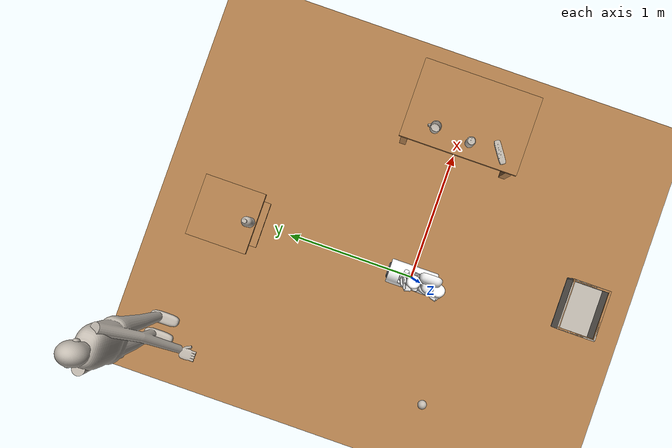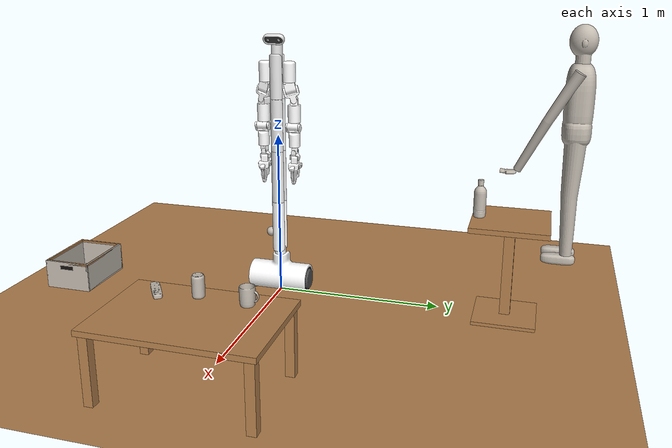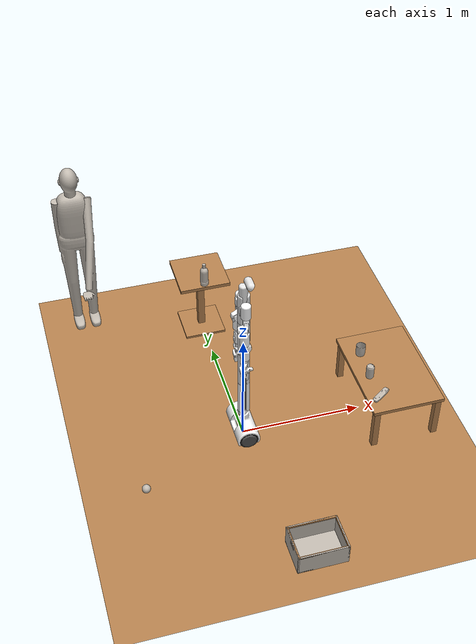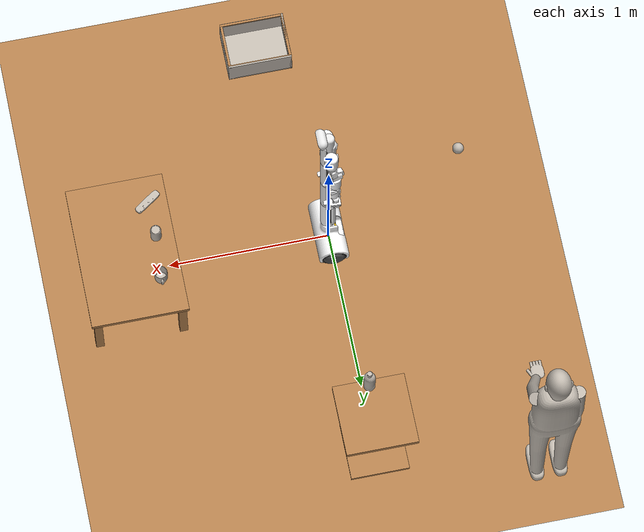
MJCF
<mujoco model="bracketbot home">
  <include file="../../main_mujoco/chopped_dynamic.xml"/>
  <!-- chopped_dynamic.xml sets meshdir relative to main_mujoco; point it back
       there from this folder. Must come after the include to take effect. -->
  <compiler meshdir="../../main_mujoco/meshes/" texturedir="../../comp_vision_sim/assets/"/>
  <include file="../../comp_vision_sim/assets/household.xml"/>
  <option noslip_iterations="5"/>

  <statistic center="0.8 0 0.5" extent="2.6"/>

  <visual>
    <headlight diffuse="0.55 0.55 0.55" ambient="0.35 0.35 0.35" specular="0.1 0.1 0.1"/>
    <rgba haze="0.15 0.25 0.35 1"/>
    <global azimuth="150" elevation="-20" offwidth="1280" offheight="960"/>
    <map znear="0.005" zfar="30"/>
    <quality shadowsize="4096"/>
  </visual>

  <asset>
    <texture type="skybox" builtin="gradient" rgb1="0.3 0.5 0.7" rgb2="0 0 0" width="512" height="3072"/>
    <!-- oak boards, as in home_search.xml, rather than a checkerboard -->
    <texture type="2d" name="woodfloor" file="floor_oak.png"/>
    <material name="woodfloor" texture="woodfloor" texuniform="true" texrepeat="1.6 1.6"
              reflectance="0.05" specular="0.18" shininess="0.25"/>
    <material name="furniture" rgba="0.42 0.30 0.22 1"/>
    <material name="basket" rgba="0.75 0.68 0.52 1"/>
    <material name="clothes" rgba="0.38 0.42 0.50 1"/>
    <material name="skin" rgba="0.80 0.66 0.56 1"/>
    <material name="mug" rgba="0.85 0.18 0.18 1"/>
    <material name="can" rgba="0.15 0.70 0.25 1"/>
    <material name="bottle" rgba="0.92 0.80 0.10 1"/>
    <material name="remote" rgba="0.50 0.20 0.75 1"/>
    <material name="ball" rgba="0.95 0.30 0.65 1"/>
  </asset>

  <default>
    <default class="item">
      <geom condim="4" friction="1.0 0.01 0.001" solref="0.005 1" priority="1" group="3"/>
    </default>
    <default class="look">
      <geom type="mesh" contype="0" conaffinity="0" group="2" mass="0"/>
    </default>
  </default>

  <worldbody>
    <light pos="1 0 4" dir="0 0 -1" directional="true" diffuse="0.5 0.5 0.5"/>
    <light pos="3 3 3" dir="-1 -1 -1" diffuse="0.35 0.35 0.35"/>
    <geom name="floor" size="0 0 0.05" type="plane" material="woodfloor"
          friction="1.6 0.01 0.001" condim="4"/>

    <!-- coffee table, 0.40 m high, in front of the robot's start pose -->
    <body name="coffee_table" pos="1.25 0 0">
      <geom name="coffee_table_top" type="box" pos="0 0 0.385" size="0.30 0.45 0.015"
            material="look_tabletop" friction="1.0 0.01 0.001" condim="4"/>
      <geom type="box" pos=" 0.26  0.41 0.185" size="0.025 0.025 0.185" material="look_tableleg"/>
      <geom type="box" pos=" 0.26 -0.41 0.185" size="0.025 0.025 0.185" material="look_tableleg"/>
      <geom type="box" pos="-0.26  0.41 0.185" size="0.025 0.025 0.185" material="look_tableleg"/>
      <geom type="box" pos="-0.26 -0.41 0.185" size="0.025 0.025 0.185" material="look_tableleg"/>
    </body>

    <!-- side table, 0.60 m high, to the robot's left -->
    <body name="side_table" pos="0 1.4 0">
      <geom name="side_table_top" type="box" pos="0 0 0.585" size="0.22 0.22 0.015"
            material="look_tabletop" friction="1.0 0.01 0.001" condim="4"/>
      <geom type="box" pos="0 0 0.285" size="0.03 0.03 0.285" material="look_tableleg"/>
      <geom type="box" pos="0 0 0.01" size="0.18 0.18 0.01" material="look_tableleg"/>
    </body>

    <body name="basket" pos="0.2 -1.3 0">
      <geom name="basket_floor" type="box" pos="0 0 0.005" size="0.2 0.15 0.005" material="look_wicker"/>
      <geom name="basket_wall_e" type="box" pos=" 0.195 0 0.09" size="0.005 0.15 0.09" material="look_wicker"/>
      <geom name="basket_wall_w" type="box" pos="-0.195 0 0.09" size="0.005 0.15 0.09" material="look_wicker"/>
      <geom name="basket_wall_n" type="box" pos="0  0.145 0.09" size="0.2 0.005 0.09" material="look_wicker"/>
      <geom name="basket_wall_s" type="box" pos="0 -0.145 0.09" size="0.2 0.005 0.09" material="look_wicker"/>
      <geom class="look" type="box" pos=" 0.192 0 0.174" size="0.008 0.150 0.006" material="look_tabletop"/>
      <geom class="look" type="box" pos="-0.192 0 0.174" size="0.008 0.150 0.006" material="look_tabletop"/>
      <geom class="look" type="box" pos="0  0.142 0.174" size="0.200 0.008 0.006" material="look_tabletop"/>
      <geom class="look" type="box" pos="0 -0.142 0.174" size="0.200 0.008 0.006" material="look_tabletop"/>
      <geom class="look" type="box" pos=" 0.1996 0 0.145" size="0.0005 0.045 0.012" rgba="0.08 0.06 0.04 1"/>
      <geom class="look" type="box" pos="-0.1996 0 0.145" size="0.0005 0.045 0.012" rgba="0.08 0.06 0.04 1"/>
    </body>

    <body name="person" pos="-1.0 1.75 0">
      <geom type="box" pos="0 0 0.42" size="0.13 0.09 0.42" material="clothes" group="3"/>
      <geom type="cylinder" pos="0 0 1.1" size="0.17 0.28" material="clothes" group="3"/>
      <geom type="sphere" pos="0 0 1.52" size="0.11" material="skin" group="3"/>
      <!-- hand held out at waist height: 0.63 m keeps the release point and
           the hover above it inside the arm's top-grasp envelope -->
      <!-- forearm kept BELOW the palm's top: level with it, an item set on
           the palm's edge landed on the arm instead -->
      <geom type="box" pos="0 -0.19 0.585" size="0.035 0.19 0.03" material="skin" group="3"/>
      <geom name="person_palm" type="box" pos="0 -0.43 0.615" size="0.07 0.06 0.012"
            material="skin" friction="1.2 0.01 0.001" condim="4" group="3"/>
      <geom class="look" mesh="look_person" material="look_person"/>
    </body>

    <!-- ===== items on the coffee table (near edge is x = 0.95) ===== -->
    <body name="mug" pos="1.08 0.22 0.40">
      <freejoint name="mug_free"/>
      <geom name="mug_body" class="item" type="cylinder" pos="0 0 0.05" size="0.04 0.05"
            material="mug" mass="0.22"/>
      <geom name="mug_handle" class="item" type="box" pos="0 0.05 0.05" size="0.008 0.012 0.03"
            material="mug" mass="0.03"/>
      <geom class="look" mesh="look_mug" material="look_mug"/>
    </body>

    <body name="can" pos="1.06 -0.05 0.40">
      <freejoint name="can_free"/>
      <geom name="can_body" class="item" type="cylinder" pos="0 0 0.06" size="0.033 0.06"
            material="can" mass="0.15"/>
      <geom class="look" mesh="look_can" material="look_can"/>
    </body>

    <body name="remote" pos="1.07 -0.28 0.40" euler="0 0 0.6">
      <freejoint name="remote_free"/>
      <geom name="remote_body" class="item" type="box" pos="0 0 0.0125" size="0.09 0.024 0.0125"
            material="remote" mass="0.12"/>
      <geom class="look" mesh="look_remote" material="look_remote"/>
    </body>

    <!-- ===== items on the side table ===== -->
    <body name="bottle" pos="0 1.22 0.60">
      <freejoint name="bottle_free"/>
      <geom name="bottle_body" class="item" type="cylinder" pos="0 0 0.09" size="0.035 0.09"
            material="bottle" mass="0.20"/>
      <geom name="bottle_neck" class="item" type="cylinder" pos="0 0 0.20" size="0.016 0.02"
            material="bottle" mass="0.02"/>
      <geom class="look" mesh="look_bottle" material="look_bottle"/>
    </body>

    <!-- ===== "missing" items on the floor ===== -->
    <body name="ball" pos="-0.9 -0.4 0">
      <freejoint name="ball_free"/>
      <geom name="ball_body" class="item" type="sphere" pos="0 0 0.035" size="0.035"
            material="ball" mass="0.06" condim="6" friction="1.0 0.02 0.002"/>
      <geom class="look" mesh="look_ball" material="look_ball"/>
    </body>
  </worldbody>
</mujoco>

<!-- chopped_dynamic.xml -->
<mujoco model="bracketbot_chopped_v2">
  <compiler angle="radian" meshdir="meshes/" autolimits="true" />
  <option timestep="0.002" integrator="implicitfast" cone="elliptic" impratio="10" />
  <asset>
    <mesh name="Base_Extrusion__Base_Extrusion" content_type="model/stl" file="Base_Extrusion__Base_Extrusion.stl" />
    <mesh name="Base_Extrusion__Base_Extrusion__Base_Extrusion__Base_Extrusion" content_type="model/stl" file="Base_Extrusion__Base_Extrusion__Base_Extrusion__Base_Extrusion.stl" />
    <mesh name="Base_Plate__Base_Plate" content_type="model/stl" file="Base_Plate__Base_Plate.stl" />
    <mesh name="Base_Print__Base_Print" content_type="model/stl" file="Base_Print__Base_Print.stl" />
    <mesh name="Battery_Terminal__Battery_Terminal" content_type="model/stl" file="Battery_Terminal__Battery_Terminal.stl" />
    <mesh name="Bottom_Cover_Back__Bottom_Cover_Back__Bottom_Cover_Back__Bottom_Cover_Back" content_type="model/stl" file="Bottom_Cover_Back__Bottom_Cover_Back__Bottom_Cover_Back__Bottom_Cover_Back.stl" />
    <mesh name="Bottom_Cover_Front__Bottom_Cover_Front__Bottom_Cover_Front__Bottom_Cover_Front" content_type="model/stl" file="Bottom_Cover_Front__Bottom_Cover_Front__Bottom_Cover_Front__Bottom_Cover_Front.stl" />
    <mesh name="Camera_Cover__Camera_Cover__Camera_Cover__Camera_Cover" content_type="model/stl" file="Camera_Cover__Camera_Cover__Camera_Cover__Camera_Cover.stl" />
    <mesh name="Cover_MiddleBot_Back__Cover_MiddleBot_Back__Cover_MiddleBot_Back__Cover_MiddleBot_Back" content_type="model/stl" file="Cover_MiddleBot_Back__Cover_MiddleBot_Back__Cover_MiddleBot_Back__Cover_MiddleBot_Back.stl" />
    <mesh name="Cover_MiddleBot_Front__Cover_MiddleBot_Front__Cover_MiddleBot_Front__Cover_MiddleBot_Front" content_type="model/stl" file="Cover_MiddleBot_Front__Cover_MiddleBot_Front__Cover_MiddleBot_Front__Cover_MiddleBot_Front.stl" />
    <mesh name="Cover_MiddleTop_Back__Cover_MiddleTop_Back__Cover_MiddleTop_Back__Cover_MiddleTop_Back" content_type="model/stl" file="Cover_MiddleTop_Back__Cover_MiddleTop_Back__Cover_MiddleTop_Back__Cover_MiddleTop_Back.stl" />
    <mesh name="Cover_MiddleTop_Front__Cover_MiddleTop_Front__Cover_MiddleTop_Front__Cover_MiddleTop_Front" content_type="model/stl" file="Cover_MiddleTop_Front__Cover_MiddleTop_Front__Cover_MiddleTop_Front__Cover_MiddleTop_Front.stl" />
    <mesh name="Cover_Top_Front__Cover_Top_Front__Cover_Top_Front__Cover_Top_Front" content_type="model/stl" file="Cover_Top_Front__Cover_Top_Front__Cover_Top_Front__Cover_Top_Front.stl" />
    <mesh name="Head__Head__Head__Head" content_type="model/stl" file="Head__Head__Head__Head.stl" />
    <mesh name="Head_Cover__Head_Cover__Head_Cover__Head_Cover" content_type="model/stl" file="Head_Cover__Head_Cover__Head_Cover__Head_Cover.stl" />
    <mesh name="Left_wheel_cap__Left_wheel_cap" content_type="model/stl" file="Left_wheel_cap__Left_wheel_cap.stl" />
    <mesh name="Left_Wheel_Tire__Left_Wheel_Tire" content_type="model/stl" file="Left_Wheel_Tire__Left_Wheel_Tire.stl" />
    <mesh name="Main_Extrusion__Main_Extrusion__Main_Extrusion__Main_Extrusion" content_type="model/stl" file="Main_Extrusion__Main_Extrusion__Main_Extrusion__Main_Extrusion.stl" />
    <mesh name="Mirror30__Mirror30" content_type="model/stl" file="Mirror30__Mirror30.stl" />
    <mesh name="Right_Wheel_Cap__Right_Wheel_Cap" content_type="model/stl" file="Right_Wheel_Cap__Right_Wheel_Cap.stl" />
    <mesh name="Right_Wheel_Tire__Right_Wheel_Tire" content_type="model/stl" file="Right_Wheel_Tire__Right_Wheel_Tire.stl" />
    <mesh name="Top_Cover_back__Top_Cover_back__Top_Cover_back__Top_Cover_back" content_type="model/stl" file="Top_Cover_back__Top_Cover_back__Top_Cover_back__Top_Cover_back.stl" />
    <mesh name="Bicep__Bicep" content_type="model/stl" file="Bicep__Bicep.stl" />
    <mesh name="Bicep_Cover__Bicep_Cover" content_type="model/stl" file="Bicep_Cover__Bicep_Cover.stl" />
    <mesh name="Forearm__Forearm" content_type="model/stl" file="Forearm__Forearm.stl" />
    <mesh name="Forearm_Cover__Forearm_Cover" content_type="model/stl" file="Forearm_Cover__Forearm_Cover.stl" />
    <mesh name="Forearm_Rotation__Forearm_Rotation" content_type="model/stl" file="Forearm_Rotation__Forearm_Rotation.stl" />
    <mesh name="Hand__Hand" content_type="model/stl" file="Hand__Hand.stl" />
    <mesh name="Hand_Motor_Mount__Hand_Motor_Mount" content_type="model/stl" file="Hand_Motor_Mount__Hand_Motor_Mount.stl" />
    <mesh name="Left_Finger__Left_Finger" content_type="model/stl" file="Left_Finger__Left_Finger.stl" />
    <mesh name="Right_Finger__Right_Finger" content_type="model/stl" file="Right_Finger__Right_Finger.stl" />
    <mesh name="Shoulder__Shoulder" content_type="model/stl" file="Shoulder__Shoulder.stl" />
    <mesh name="Shoulder_Cover__Shoulder_Cover" content_type="model/stl" file="Shoulder_Cover__Shoulder_Cover.stl" />
    <mesh name="Shoulder_Knuckle__Shoulder_Knuckle" content_type="model/stl" file="Shoulder_Knuckle__Shoulder_Knuckle.stl" />
    <mesh name="Wrist_Cam__Wrist_Cam" content_type="model/stl" file="Wrist_Cam__Wrist_Cam.stl" />
    <mesh name="Wrist_Knuckle__Wrist_Knuckle" content_type="model/stl" file="Wrist_Knuckle__Wrist_Knuckle.stl" />
    <mesh name="Shoulder__Shoulder_Mirrored" content_type="model/stl" file="Shoulder__Shoulder_Mirrored.stl" />
    <mesh name="Shoulder_Knuckle__Shoulder_Knuckle_Mirrored" content_type="model/stl" file="Shoulder_Knuckle__Shoulder_Knuckle_Mirrored.stl" />
    <mesh name="Bicep__Bicep_Mirrored" content_type="model/stl" file="Bicep__Bicep_Mirrored.stl" />
    <mesh name="Forearm__Forearm_Mirrored" content_type="model/stl" file="Forearm__Forearm_Mirrored.stl" />
    <mesh name="Forearm_Rotation__Forearm_Rotation_Mirrored" content_type="model/stl" file="Forearm_Rotation__Forearm_Rotation_Mirrored.stl" />
    <mesh name="Wrist_Knuckle__Wrist_Knuckle_Mirrored" content_type="model/stl" file="Wrist_Knuckle__Wrist_Knuckle_Mirrored.stl" />
    <mesh name="Hand__Hand_Mirrored" content_type="model/stl" file="Hand__Hand_Mirrored.stl" />
    <mesh name="Wrist_Cam__Wrist_Cam_Mirrored" content_type="model/stl" file="Wrist_Cam__Wrist_Cam_Mirrored.stl" />
    <mesh name="Hand_Motor_Mount__Hand_Motor_Mount_Mirrored" content_type="model/stl" file="Hand_Motor_Mount__Hand_Motor_Mount_Mirrored.stl" />
    <mesh name="Right_Finger__Right_Finger_Mirrored" content_type="model/stl" file="Right_Finger__Right_Finger_Mirrored.stl" />
    <mesh name="Left_Finger__Left_Finger_Mirrored" content_type="model/stl" file="Left_Finger__Left_Finger_Mirrored.stl" />
    <mesh name="Forearm_Cover__Forearm_Cover_Mirrored" content_type="model/stl" file="Forearm_Cover__Forearm_Cover_Mirrored.stl" />
    <mesh name="Bicep_Cover__Bicep_Cover_Mirrored" content_type="model/stl" file="Bicep_Cover__Bicep_Cover_Mirrored.stl" />
    <mesh name="Shoulder_Cover__Shoulder_Cover_Mirrored" content_type="model/stl" file="Shoulder_Cover__Shoulder_Cover_Mirrored.stl" />
  </asset>
  <default>
    <default class="visual">
      <geom contype="0" conaffinity="0" group="2" type="mesh" density="0" />
    </default>
    <default class="collision">
      <geom contype="1" conaffinity="1" group="3" density="0" rgba="0.9 0.4 0.2 0.35" friction="1 0.005 0.0001" />
    </default>
    <default class="wheel">
      <geom contype="1" conaffinity="1" group="3" density="0" rgba="0.1 0.1 0.1 0.6" friction="1.6 0.01 0.001" condim="4" solref="0.005 1" priority="2" />
    </default>
    <default class="pad">
      <geom contype="1" conaffinity="1" group="3" density="0" rgba="0.2 0.8 0.4 0.6" friction="2.5 0.05 0.005" condim="4" priority="3" solref="0.004 1" solimp="0.95 0.99 0.001" />
    </default>
    <default class="arm">
      <joint damping="4.0" armature="0.05" frictionloss="0.1" />
      <position kp="800" kv="60" forcerange="-150 150" />
    </default>
    <default class="mast">
      <joint damping="60" armature="0.5" frictionloss="1.0" />
      <position kp="6000" kv="400" forcerange="-400 400" />
    </default>
    <default class="gripper">
      <joint damping="0.4" armature="0.01" frictionloss="0.02" />
      <position kp="35" kv="1.5" forcerange="-12 12" />
    </default>
  </default>
  <worldbody>
    <body name="chassis" pos="0 0 0">
      <freejoint name="root" />
      <inertial pos="0.018227 3.07762e-06 0.144928" quat="6.24856e-05 0.717422 -6.23742e-05 -0.696638" mass="3.38" diaginertia="0.0545356 0.0861119 0.11238" />
      <site name="imu" pos="0.018227 3.07762e-06 0.144928" size="0.01" rgba="0 1 0 0.5" />
      <geom class="visual" mesh="Base_Plate__Base_Plate" pos="0.0113398 6.4516e-07 0.0776294" quat="0.707106 -0.707108 -1.79246e-05 -1.77981e-05" rgba="1 1 1 1" />
      <geom class="visual" mesh="Bottom_Cover_Front__Bottom_Cover_Front__Bottom_Cover_Front__Bottom_Cover_Front" pos="0.0153412 0.00013591 0.0503629" quat="0.707106 -0.707108 -1.79246e-05 -1.77981e-05" rgba="1 1 1 1" />
      <geom class="visual" mesh="Cover_MiddleBot_Front__Cover_MiddleBot_Front__Cover_MiddleBot_Front__Cover_MiddleBot_Front" pos="0.0153412 0.00013591 0.0503629" quat="0.707106 -0.707108 -1.79246e-05 -1.77981e-05" rgba="0.8941 0.8941 0.8941 1" />
      <geom class="visual" mesh="Cover_MiddleTop_Front__Cover_MiddleTop_Front__Cover_MiddleTop_Front__Cover_MiddleTop_Front" pos="0.0153412 0.00013591 0.0503629" quat="0.707106 -0.707108 -1.79246e-05 -1.77981e-05" rgba="0.8941 0.8941 0.8941 1" />
      <geom class="visual" mesh="Cover_Top_Front__Cover_Top_Front__Cover_Top_Front__Cover_Top_Front" pos="0.0153412 0.00013591 0.0503629" quat="0.707106 -0.707108 -1.79246e-05 -1.77981e-05" rgba="0.8941 0.8941 0.8941 1" />
      <geom class="visual" mesh="Top_Cover_back__Top_Cover_back__Top_Cover_back__Top_Cover_back" pos="0.0153412 0.00013591 0.0503629" quat="0.707106 -0.707108 -1.79246e-05 -1.77981e-05" rgba="0.8941 0.8941 0.8941 1" />
      <geom class="visual" mesh="Cover_MiddleTop_Back__Cover_MiddleTop_Back__Cover_MiddleTop_Back__Cover_MiddleTop_Back" pos="0.0153412 0.00013591 0.0503629" quat="0.707106 -0.707108 -1.79246e-05 -1.77981e-05" rgba="0.8941 0.8941 0.8941 1" />
      <geom class="visual" mesh="Cover_MiddleBot_Back__Cover_MiddleBot_Back__Cover_MiddleBot_Back__Cover_MiddleBot_Back" pos="0.0153412 0.00013591 0.0503629" quat="0.707106 -0.707108 -1.79246e-05 -1.77981e-05" rgba="0.8941 0.8941 0.8941 1" />
      <geom class="visual" mesh="Bottom_Cover_Back__Bottom_Cover_Back__Bottom_Cover_Back__Bottom_Cover_Back" pos="0.0153412 0.00013591 0.0503629" quat="0.707106 -0.707108 -1.79246e-05 -1.77981e-05" rgba="1 1 1 1" />
      <geom class="visual" mesh="Main_Extrusion__Main_Extrusion__Main_Extrusion__Main_Extrusion" pos="0.0113398 6.4516e-07 0.0776294" quat="0.707106 -0.707108 -1.79246e-05 -1.77981e-05" rgba="0.302 0.302 0.302 1" />
      <geom class="visual" mesh="Base_Extrusion__Base_Extrusion__Base_Extrusion__Base_Extrusion" pos="0.0113398 6.4516e-07 0.0776294" quat="0.707106 -0.707108 -1.79246e-05 -1.77981e-05" rgba="0.8 0.8 0.8 1" />
      <geom class="visual" mesh="Base_Extrusion__Base_Extrusion" pos="0.0113397 6.47368e-07 0.0776294" quat="0.707106 -0.707108 -1.79246e-05 -1.77981e-05" rgba="0.7922 0.8196 0.9333 1" />
      <geom class="visual" mesh="Base_Print__Base_Print" pos="0.0113398 6.4516e-07 0.0776294" quat="0.707106 -0.707108 -1.79246e-05 -1.77981e-05" rgba="1 1 1 1" />
      <geom class="visual" mesh="Battery_Terminal__Battery_Terminal" pos="0.0113398 6.4516e-07 0.0776294" quat="0.707106 -0.707108 -1.79246e-05 -1.77981e-05" rgba="1 0.7569 0.0549 1" />
      <geom class="visual" mesh="Mirror30__Mirror30" pos="0.0113398 6.4516e-07 0.0776294" quat="0.707106 -0.707108 -1.79246e-05 -1.77981e-05" rgba="1 1 1 1" />
      <geom class="visual" mesh="Head__Head__Head__Head" pos="0.0113398 6.4516e-07 0.0776294" quat="0.707106 -0.707108 -1.79246e-05 -1.77981e-05" rgba="0.8941 0.8941 0.8941 1" />
      <geom class="visual" mesh="Camera_Cover__Camera_Cover__Camera_Cover__Camera_Cover" pos="0.0113428 6.4516e-07 0.0776293" quat="0.707106 -0.707108 -1.8625e-05 -1.84985e-05" rgba="0.251 0.251 0.251 1" />
      <geom class="visual" mesh="Head_Cover__Head_Cover__Head_Cover__Head_Cover" pos="0.0113398 6.4516e-07 0.0776294" quat="0.707106 -0.707108 -1.79246e-05 -1.77981e-05" rgba="0.8941 0.8941 0.8941 1" />
      <geom class="collision" name="col_base_hull" type="box" pos="3.94536e-05 7.39092e-07 0.157186" size="0.0935995 0.18575 0.129078" />
      <geom class="collision" name="col_mast" type="box" pos="8.99487e-07 2.8209e-06 0.847629" size="0.0200308 0.0200017 0.610001" />
      <geom class="collision" name="col_head" type="box" pos="0.0202672 1.33499e-05 1.5235" size="0.054031 0.0654754 0.0878748" />
      <camera name="head_rgb" mode="fixed" fovy="42" pos="0.0792982 0 1.5435" xyaxes="0 -1 0 0 0 1" />
      <camera name="head_depth" mode="fixed" fovy="58" pos="0.0792982 0 1.5435" xyaxes="0 -1 0 0.374607 0 0.927184" />
      <camera name="head_stereo_left" mode="fixed" fovy="55" pos="0.0792982 0.03 1.5435" xyaxes="0 -1 0 0 0 1" />
      <camera name="head_stereo_right" mode="fixed" fovy="55" pos="0.0792982 -0.03 1.5435" xyaxes="0 -1 0 0 0 1" />
      <body name="right_wheel" pos="0 -0.1611 0.0846">
        <joint name="right_wheel_joint" type="hinge" axis="0 1 0" damping="0.02" armature="0.005" frictionloss="0.01" />
        <inertial pos="0 0 0" mass="2.2" diaginertia="0.009 0.018 0.009" />
        <geom class="visual" mesh="Right_Wheel_Cap__Right_Wheel_Cap" pos="0.0113398 0.161101 -0.0069706" quat="0.707106 -0.707108 -1.79246e-05 -1.77981e-05" rgba="0.302 0.302 0.302 1" />
        <geom class="visual" mesh="Right_Wheel_Tire__Right_Wheel_Tire" pos="0.0113398 0.161101 -0.0069706" quat="0.707106 -0.707108 -1.79246e-05 -1.77981e-05" rgba="0.302 0.302 0.302 1" />
        <geom class="wheel" name="right_tire" type="cylinder" size="0.0846 0.0226" zaxis="0 1 0" />
        <site name="right_wheel_site" size="0.005" rgba="1 0 0 0.5" />
      </body>
      <body name="left_wheel" pos="0 0.1611 0.0846">
        <joint name="left_wheel_joint" type="hinge" axis="0 1 0" damping="0.02" armature="0.005" frictionloss="0.01" />
        <inertial pos="0 0 0" mass="2.2" diaginertia="0.009 0.018 0.009" />
        <geom class="visual" mesh="Left_wheel_cap__Left_wheel_cap" pos="0.0113398 -0.161099 -0.0069706" quat="0.707106 -0.707108 -1.79246e-05 -1.77981e-05" rgba="0.302 0.302 0.302 1" />
        <geom class="visual" mesh="Left_Wheel_Tire__Left_Wheel_Tire" pos="0.0113398 -0.161099 -0.0069706" quat="0.707106 -0.707108 -1.79246e-05 -1.77981e-05" rgba="0.302 0.302 0.302 1" />
        <geom class="wheel" name="left_tire" type="cylinder" size="0.0846 0.0226" zaxis="0 1 0" />
        <site name="left_wheel_site" size="0.005" rgba="1 0 0 0.5" />
      </body>
      <body name="arm_base" pos="-1.35902e-08 -2.23143e-08 0.0303917" quat="1 0 0 0">
        <inertial pos="0 0 0" mass="4.17424e-07" diaginertia="0 0 0" />
        <body name="shoulder__shoulder" pos="7.84415e-09 -0.0275 1.40573" quat="1 4.63465e-12 1.8366e-06 1.42623e-07">
          <inertial pos="-0.00207733 -0.0439747 -0.0719634" quat="0.993106 -0.0357613 0.00588813 -0.111477" mass="0.293558" diaginertia="0.000833124 0.00080203 0.000207478" />
          <joint name="rj0" type="slide" range="-1.03044 0" class="mast" />
          <geom pos="0.0112151 0.0286011 -1.35824" quat="0 1 0 0" type="mesh" contype="0" conaffinity="0" group="1" rgba="1 1 1 1" density="0" mesh="Shoulder__Shoulder" />
          <body name="shoulder_cover__shoulder_cover" pos="0.0112151 0.0286011 -1.35824" quat="0 1 0 0">
            <inertial pos="-0.0111642 0.0752512 -1.30987" mass="0.239577" diaginertia="0.000379014 0.000379014 0.000180015" />
            <geom type="mesh" contype="0" conaffinity="0" group="1" rgba="1 1 1 1" density="0" mesh="Shoulder_Cover__Shoulder_Cover" />
          </body>
          <body name="shoulder_knuckle__shoulder_knuckle" pos="-0.00793877 -0.0857475 -0.144638" quat="0.76632 0.608761 -1.00888e-06 -0.205336">
            <inertial pos="-0.00359973 -0.0351324 -0.032679" quat="0.0694297 0.857532 0.164673 0.48239" mass="0.0558705" diaginertia="7.70147e-05 5.78959e-05 5.13611e-05" />
            <joint name="rj1" range="-2.0944 2.0944" class="arm" />
            <geom pos="0.285662 -1.10745 -0.425773" quat="0.608761 0.76632 0.205335 0" type="mesh" contype="0" conaffinity="0" group="1" rgba="1 1 1 1" density="0" mesh="Shoulder_Knuckle__Shoulder_Knuckle" />
            <body name="bicep__bicep" pos="-0.0345871 -0.0799863 -0.0310962" quat="0.425282 0.427297 0.563398 0.56492">
              <inertial pos="-0.0787373 -0.0223314 0.0425602" quat="0.574949 0.0709813 0.0593942 0.812938" mass="0.270597" diaginertia="0.000860707 0.000850777 0.000156718" />
              <joint name="rj2" range="-2.0944 2.0944" class="arm" />
              <geom pos="-1.08044 -0.3902 0.0283732" quat="0.70241 0.181779 -0.688169 1.62104e-12" type="mesh" contype="0" conaffinity="0" group="1" rgba="1 1 1 1" density="0" mesh="Bicep__Bicep" />
              <body name="bicep_cover__bicep_cover" pos="-1.08044 -0.3902 0.0283732" quat="0.70241 0.181779 -0.688169 1.62104e-12">
                <inertial pos="-0.0254793 0.097391 -1.06421" quat="0.988942 0.00734107 -0.0909335 0.11692" mass="0.0410095" diaginertia="6.9102e-05 6.60774e-05 5.30729e-05" />
                <geom type="mesh" contype="0" conaffinity="0" group="1" rgba="1 1 1 1" density="0" mesh="Bicep_Cover__Bicep_Cover" />
              </body>
              <body name="forearm__forearm" pos="-0.140146 -0.0763873 0.0558851" quat="0.62745 -0.367259 -0.485501 -0.485505">
                <inertial pos="-0.0213131 -0.0661025 0.0333011" quat="0.998205 -0.000305943 -0.0598432 0.00250762" mass="0.125696" diaginertia="0.000211413 0.000187563 7.6288e-05" />
                <joint name="rj3" range="-2.0944 2.0944" class="arm" />
                <geom pos="-0.000283681 -0.986812 -0.068819" quat="0.705623 0.708583 -0.00249187 0" type="mesh" contype="0" conaffinity="0" group="1" rgba="1 1 1 1" density="0" mesh="Forearm__Forearm" />
                <body name="forearm_cover__forearm_cover" pos="-0.000283681 -0.986812 -0.068819" quat="0.705623 0.708583 -0.00249187 0">
                  <inertial pos="-0.0228592 0.097541 -0.910018" quat="0.988569 -0.00684891 0.146667 -0.0342637" mass="0.0315972" diaginertia="4.591e-05 4.18317e-05 2.90731e-05" />
                  <geom type="mesh" contype="0" conaffinity="0" group="1" rgba="1 1 1 1" density="0" mesh="Forearm_Cover__Forearm_Cover" />
                </body>
                <body name="forearm_rotation__forearm_rotation" pos="-0.026394 -0.12487 0.0320705" quat="0.294631 -0.264653 0.65568 0.642834">
                  <inertial pos="3.56774e-05 2.45812e-05 -0.021805" quat="0.63268 0.00171299 0.00374296 0.774403" mass="0.0277186" diaginertia="9.51906e-06 8.21586e-06 6.86216e-06" />
                  <joint name="rj4" range="-2.0944 2.0944" class="arm" />
                  <geom pos="0.0641084 -0.0805833 -0.860955" quat="0.00516927 -0.393949 0.919118 -2.09626e-09" type="mesh" contype="0" conaffinity="0" group="1" rgba="1 1 1 1" density="0" mesh="Forearm_Rotation__Forearm_Rotation" />
                  <body name="wrist_knuckle__wrist_knuckle" pos="-0.0131274 -0.014875 -0.0327431" quat="0.668883 0.356813 -0.610479 0.229338">
                    <inertial pos="-0.0218344 -0.00560663 -0.02105" quat="-0.0884246 0.708648 0.053519 0.69795" mass="0.017672" diaginertia="9.31882e-06 9.01369e-06 8.94978e-06" />
                    <joint name="rj5" range="-2.0944 2.0944" class="arm" />
                    <geom pos="-0.791586 -0.264038 -0.0274632" quat="0.703518 0.141721 -0.696403 2.94367e-05" type="mesh" contype="0" conaffinity="0" group="1" rgba="1 1 1 1" density="0" mesh="Wrist_Knuckle__Wrist_Knuckle" />
                    <body name="hand__hand" pos="-0.0480111 0.0111602 -0.0199286" quat="0.504103 -0.402362 -0.581468 -0.495863">
                      <inertial pos="0.0104256 -0.0225964 -0.0208472" quat="0.557084 0.277612 0.286901 0.728201" mass="0.043433" diaginertia="4.29909e-05 3.78548e-05 2.46968e-05" />
                      <joint name="rj6" range="-2.0944 2.0944" class="arm" />
                      <geom pos="0.158112 -0.771279 -0.0790065" quat="0.724748 0.675251 0.137026 0" type="mesh" contype="0" conaffinity="0" group="1" rgba="1 1 1 1" density="0" mesh="Hand__Hand" />
                      <body name="left_finger__left_finger" pos="0.0413008 -0.0450476 -0.0372147" quat="0.504688 0.364974 0.605635 0.495268">
                        <inertial pos="-0.0340814 -0.00413194 -0.0245907" quat="0.629243 0.0482231 0.0863023 0.770896" mass="0.0192533" diaginertia="2.4503e-05 1.85765e-05 7.65472e-06" />
                        <joint name="right_left_gripper" range="0 1" class="gripper" />
                        <geom pos="-0.700467 -0.222749 -0.0540855" quat="0.695209 0.144141 -0.704207 1.7071e-08" type="mesh" contype="0" conaffinity="0" group="1" rgba="1 1 1 1" density="0" mesh="Left_Finger__Left_Finger" />
                        <geom class="pad" name="pad_left_finger__left_finger" type="box" pos="-0.101068 -0.0166277 -0.00985441" quat="-0.0741789 0.691555 0.10755 0.71041" size="0.02 0.005 0.018" />
                      </body>
                      <body name="right_finger__right_finger" pos="0.0413009 -0.0450476 -0.00313575" quat="0.520146 0.586412 -0.395122 -0.479008">
                        <inertial pos="0.0348601 -0.000281218 0.0243554" quat="0.624049 0.119738 0.01936 0.771914" mass="0.0190719" diaginertia="2.41795e-05 1.83122e-05 7.56347e-06" />
                        <joint name="right_right_gripper" range="0 1" class="gripper" />
                        <geom pos="0.736527 0.0353731 0.0544735" quat="0.718808 -0.139409 0.681088 1.76495e-08" type="mesh" contype="0" conaffinity="0" group="1" rgba="1 1 1 1" density="0" mesh="Right_Finger__Right_Finger" />
                        <geom class="pad" name="pad_right_finger__right_finger" type="box" pos="0.10257 0.00371085 0.0096654" quat="0.0333104 0.710855 0.069785 -0.699075" size="0.02 0.005 0.018" />
                      </body>
                      <body name="wrist_cam__wrist_cam" pos="0.158112 -0.771279 -0.0790065" quat="0.724748 0.675251 0.137026 0">
                        <inertial pos="0.0335636 0.104461 -0.727313" quat="0.923047 -0.0130961 0.3712 0.100115" mass="0.00122084" diaginertia="6.44369e-08 5.83221e-08 5.19117e-08" />
                        <geom type="mesh" contype="0" conaffinity="0" group="1" rgba="0.792157 0.819608 0.933333 1" density="0" mesh="Wrist_Cam__Wrist_Cam" />
                        <body name="hand_motor_mount__hand_motor_mount" pos="0 0 0">
                          <inertial pos="-0.0211672 0.094284 -0.72929" quat="0.447815 0.538612 -0.441638 0.560638" mass="0.0137253" diaginertia="8.60807e-06 7.32992e-06 4.25017e-06" />
                          <geom type="mesh" contype="0" conaffinity="0" group="1" rgba="1 1 1 1" density="0" mesh="Hand_Motor_Mount__Hand_Motor_Mount" />
                        </body>
                        <camera name="wrist_cam_right" mode="fixed" fovy="60" pos="0.035412 0.105034 -0.710844" xyaxes="-0.94002982 0.052407572 -0.33704212 0 0.98812591 0.15364632" />
                      </body>
                      <body name="right_eef" pos="0.0337039 -0.14163 -0.0201752" quat="0.702288 0.702288 0.0824116 0.0824116">
                        <inertial pos="0 0 0" mass="4.17424e-07" diaginertia="0 0 0" />
                      </body>
                      <geom class="collision" name="col_hand__hand" type="box" pos="0.0295917 -0.0288798 -0.0201749" size="0.052067 0.0456034 0.033038" />
                      <site name="right_grasp" pos="0.0554168 -0.146524 -0.0214994" quat="0.706816 -0.698929 -0.0925778 0.05778" size="0.008" rgba="0 1 0.3 0.6" group="4" />
                    </body>
                  </body>
                </body>
                <geom class="collision" name="col_forearm__forearm" type="box" pos="-0.0205737 -0.0537982 0.0328214" size="0.0382869 0.0715442 0.044621" />
              </body>
            </body>
          </body>
        </body>
        <body name="l_shoulder__shoulder" pos="-7.84415e-09 0.0275 1.40573" quat="1 2.65358e-06 1.8366e-06 1.42623e-07">
          <inertial pos="-0.00207733 0.0439747 -0.0719634" quat="0.993106 0.0357613 0.00588813 0.111477" mass="0.293558" diaginertia="0.000833124 0.00080203 0.000207478" />
          <joint name="lj0" type="slide" range="-1.03044 0" class="mast" />
          <geom pos="0.0112151 -0.0286011 -1.35824" quat="0 1 0 0" type="mesh" contype="0" conaffinity="0" group="1" rgba="1 1 1 1" density="0" mesh="Shoulder__Shoulder_Mirrored" />
          <body name="l_shoulder_cover__shoulder_cover" pos="0.0112151 -0.0286011 -1.35824" quat="0 -1 0 0">
            <inertial pos="-0.0111642 -0.0752512 -1.30987" mass="0.239577" diaginertia="0.000379014 0.000379014 0.000180015" />
            <geom type="mesh" contype="0" conaffinity="0" group="1" rgba="1 1 1 1" density="0" mesh="Shoulder_Cover__Shoulder_Cover_Mirrored" />
          </body>
          <body name="l_shoulder_knuckle__shoulder_knuckle" pos="-0.00793877 0.0857475 -0.144638" quat="0.588018 0.793353 7.74139e-07 0.15756">
            <inertial pos="-0.0206837 -0.0286257 0.032679" quat="-0.0694297 0.857532 -0.164673 0.48239" mass="0.0558705" diaginertia="7.70147e-05 5.78959e-05 5.13611e-05" />
            <joint name="lj1" range="-2.0944 2.0944" class="arm" />
            <geom pos="-0.306335 -1.10191 0.425773" quat="0.793353 0.588018 -0.157559 0" type="mesh" contype="0" conaffinity="0" group="1" rgba="1 1 1 1" density="0" mesh="Shoulder_Knuckle__Shoulder_Knuckle_Mirrored" />
            <body name="l_bicep__bicep" pos="-0.0699464 -0.0519767 0.0310962" quat="0.558556 0.557003 0.4356 0.433608">
              <inertial pos="-0.0787373 0.0223314 0.0425602" quat="0.812938 0.0593942 0.0709813 0.574949" mass="0.270597" diaginertia="0.000860707 0.000850777 0.000156718" />
              <joint name="lj2" range="-2.0944 2.0944" class="arm" />
              <geom pos="-1.08044 0.3902 0.0283732" quat="0.70241 -0.181779 -0.688169 -1.62104e-12" type="mesh" contype="0" conaffinity="0" group="1" rgba="1 1 1 1" density="0" mesh="Bicep__Bicep_Mirrored" />
              <body name="l_bicep_cover__bicep_cover" pos="-1.08044 0.3902 0.0283732" quat="0.70241 -0.181779 -0.688169 -1.62104e-12">
                <inertial pos="-0.0254793 -0.097391 -1.06421" quat="0.988942 -0.00734107 -0.0909335 -0.11692" mass="0.0410095" diaginertia="6.9102e-05 6.60774e-05 5.30729e-05" />
                <geom type="mesh" contype="0" conaffinity="0" group="1" rgba="1 1 1 1" density="0" mesh="Bicep_Cover__Bicep_Cover_Mirrored" />
              </body>
              <body name="l_forearm__forearm" pos="-0.140146 0.0763873 0.0558851" quat="-0.36555 0.625739 0.487709 0.486789">
                <inertial pos="-0.0208477 -0.0662508 -0.0333011" quat="0.998205 0.000305943 -0.0598432 -0.00250762" mass="0.125696" diaginertia="0.000211413 0.000187563 7.6288e-05" />
                <joint name="lj3" range="-2.0944 2.0944" class="arm" />
                <geom pos="0.00665687 -0.98679 0.068819" quat="0.708587 0.705619 0.00248144 0" type="mesh" contype="0" conaffinity="0" group="1" rgba="1 1 1 1" density="0" mesh="Forearm__Forearm_Mirrored" />
                <body name="l_forearm_cover__forearm_cover" pos="0.00665687 -0.98679 0.068819" quat="0.708587 0.705619 0.00248144 0">
                  <inertial pos="-0.0228592 -0.097541 -0.910018" quat="0.988569 0.00684891 0.146667 0.0342637" mass="0.0315972" diaginertia="4.591e-05 4.18317e-05 2.90731e-05" />
                  <geom type="mesh" contype="0" conaffinity="0" group="1" rgba="1 1 1 1" density="0" mesh="Forearm_Cover__Forearm_Cover_Mirrored" />
                </body>
                <body name="l_forearm_rotation__forearm_rotation" pos="-0.0255151 -0.125052 -0.0320705" quat="-0.266957 0.292369 0.643866 0.654745">
                  <inertial pos="3.56774e-05 -2.45812e-05 -0.021805" quat="0.774403 0.00374296 0.00171299 0.63268" mass="0.0277186" diaginertia="9.51906e-06 8.21586e-06 6.86216e-06" />
                  <joint name="lj4" range="-2.0944 2.0944" class="arm" />
                  <geom pos="0.0641084 0.0805833 -0.860955" quat="0.00516927 0.393949 0.919118 2.09626e-09" type="mesh" contype="0" conaffinity="0" group="1" rgba="1 1 1 1" density="0" mesh="Forearm_Rotation__Forearm_Rotation_Mirrored" />
                  <body name="l_wrist_knuckle__wrist_knuckle" pos="-0.0131274 0.014875 -0.0327431" quat="0.668883 -0.356813 -0.610479 -0.229338">
                    <inertial pos="-0.0218344 0.00560663 -0.02105" quat="0.0884246 0.708648 -0.053519 0.69795" mass="0.017672" diaginertia="9.31882e-06 9.01369e-06 8.94978e-06" />
                    <joint name="lj5" range="-2.0944 2.0944" class="arm" />
                    <geom pos="-0.791586 0.264038 -0.0274632" quat="0.703518 -0.141721 -0.696403 -2.94367e-05" type="mesh" contype="0" conaffinity="0" group="1" rgba="1 1 1 1" density="0" mesh="Wrist_Knuckle__Wrist_Knuckle_Mirrored" />
                    <body name="l_hand__hand" pos="-0.0480111 -0.0111602 -0.0199286" quat="0.509963 -0.592647 -0.385706 -0.489834">
                      <inertial pos="0.000792808 -0.0248729 0.0208472" quat="0.728201 0.286901 0.277612 0.557084" mass="0.043433" diaginertia="4.29909e-05 3.78548e-05 2.46968e-05" />
                      <joint name="lj6" range="-2.0944 2.0944" class="arm" />
                      <geom pos="-0.15504 -0.771902 0.0790065" quat="0.689014 0.710272 -0.144133 0" type="mesh" contype="0" conaffinity="0" group="1" rgba="1 1 1 1" density="0" mesh="Hand__Hand_Mirrored" />
                      <body name="l_left_finger__left_finger" pos="0.0204743 -0.0575834 0.0372147" quat="0.496119 0.414495 -0.572882 -0.503851">
                        <inertial pos="0.0329639 -0.00959125 0.0245907" quat="0.770896 0.0863023 0.0482231 0.629243" mass="0.0192533" diaginertia="2.4503e-05 1.85765e-05 7.65472e-06" />
                        <joint name="left_left_gripper" range="0 1" class="gripper" />
                        <geom pos="0.731653 -0.070385 0.0540855" quat="0.718808 0.139409 0.681088 1.76511e-08" type="mesh" contype="0" conaffinity="0" group="1" rgba="1 1 1 1" density="0" mesh="Left_Finger__Left_Finger_Mirrored" />
                        <geom class="pad" name="pad_l_left_finger__left_finger" type="box" pos="0.0994723 -0.0244196 0.00985402" quat="-0.0333075 0.710855 -0.0697826 -0.699075" size="0.02 0.005 0.018" />
                      </body>
                      <body name="l_right_finger__right_finger" pos="0.0204743 -0.0575834 0.00313575" quat="0.478128 0.593102 0.385006 0.520954">
                        <inertial pos="-0.0319461 0.0139555 -0.0243554" quat="0.771914 0.01936 0.119738 0.624049" mass="0.0190719" diaginertia="2.41795e-05 1.83122e-05 7.56347e-06" />
                        <joint name="left_right_gripper" range="0 1" class="gripper" />
                        <geom pos="-0.691192 0.25686 -0.0544735" quat="0.695209 -0.144141 -0.704207 1.70707e-08" type="mesh" contype="0" conaffinity="0" group="1" rgba="1 1 1 1" density="0" mesh="Right_Finger__Right_Finger_Mirrored" />
                        <geom class="pad" name="pad_l_right_finger__right_finger" type="box" pos="-0.0957791 0.0368878 -0.00966579" quat="0.0741806 0.691555 -0.107552 0.71041" size="0.02 0.005 0.018" />
                      </body>
                      <body name="l_wrist_cam__wrist_cam" pos="-0.15504 -0.771902 0.0790065" quat="0.689014 0.710272 -0.144133 0">
                        <inertial pos="0.0335636 -0.104461 -0.727313" quat="0.923047 0.0130961 0.3712 -0.100115" mass="0.00122084" diaginertia="6.44369e-08 5.83221e-08 5.19117e-08" />
                        <geom type="mesh" contype="0" conaffinity="0" group="1" rgba="0.792157 0.819608 0.933333 1" density="0" mesh="Wrist_Cam__Wrist_Cam_Mirrored" />
                        <body name="l_hand_motor_mount__hand_motor_mount" pos="0 0 0">
                          <inertial pos="-0.0211672 -0.094284 -0.72929" quat="0.538612 0.447815 -0.560638 0.441638" mass="0.0137253" diaginertia="8.60807e-06 7.32992e-06 4.25017e-06" />
                          <geom type="mesh" contype="0" conaffinity="0" group="1" rgba="1 1 1 1" density="0" mesh="Hand_Motor_Mount__Hand_Motor_Mount_Mirrored" />
                        </body>
                        <camera name="wrist_cam_left" mode="fixed" fovy="60" pos="0.035412 -0.105034 -0.710844" xyaxes="0.94002993 0.052405306 0.33704215 0 -0.98812692 0.15363981" />
                      </body>
                      <body name="left_eef" pos="-0.0241696 -0.143565 0.0201752" quat="0.704649 0.704649 -0.0589006 -0.0589006">
                        <inertial pos="0 0 0" mass="4.17424e-07" diaginertia="0 0 0" />
                      </body>
                      <geom class="collision" name="col_l_hand__hand" type="box" pos="0.00878373 -0.0313181 0.0201754" size="0.0516383 0.0480709 0.0330379" />
                      <site name="left_grasp" pos="-0.0060817 -0.156535 0.0214993" quat="0.703377 -0.704191 0.083941 -0.0482691" size="0.008" rgba="0 1 0.3 0.6" group="4" />
                    </body>
                  </body>
                </body>
                <geom class="collision" name="col_l_forearm__forearm" type="box" pos="-0.0203519 -0.0539687 -0.0328203" size="0.0380565 0.0717169 0.044621" />
              </body>
            </body>
          </body>
        </body>
      </body>
      <camera name="chase" mode="trackcom" pos="-2.2 -2.2 1.6" xyaxes="0.707 -0.707 0 0.29 0.29 0.91" />
    </body>
  </worldbody>
  <actuator>
    <motor name="left_wheel" joint="left_wheel_joint" gear="1" ctrlrange="-15 15" />
    <motor name="right_wheel" joint="right_wheel_joint" gear="1" ctrlrange="-15 15" />
    <position class="mast" name="act_rj0" joint="rj0" />
    <position class="arm" name="act_rj1" joint="rj1" />
    <position class="arm" name="act_rj2" joint="rj2" />
    <position class="arm" name="act_rj3" joint="rj3" />
    <position class="arm" name="act_rj4" joint="rj4" />
    <position class="arm" name="act_rj5" joint="rj5" />
    <position class="arm" name="act_rj6" joint="rj6" />
    <position class="gripper" name="act_right_left_gripper" joint="right_left_gripper" />
    <position class="gripper" name="act_right_right_gripper" joint="right_right_gripper" />
    <position class="mast" name="act_lj0" joint="lj0" />
    <position class="arm" name="act_lj1" joint="lj1" />
    <position class="arm" name="act_lj2" joint="lj2" />
    <position class="arm" name="act_lj3" joint="lj3" />
    <position class="arm" name="act_lj4" joint="lj4" />
    <position class="arm" name="act_lj5" joint="lj5" />
    <position class="arm" name="act_lj6" joint="lj6" />
    <position class="gripper" name="act_left_left_gripper" joint="left_left_gripper" />
    <position class="gripper" name="act_left_right_gripper" joint="left_right_gripper" />
  </actuator>
  <sensor>
    <framequat name="imu_quat" objtype="site" objname="imu" />
    <gyro name="imu_gyro" site="imu" />
    <accelerometer name="imu_acc" site="imu" />
    <framepos name="base_pos" objtype="site" objname="imu" />
    <framelinvel name="base_linvel" objtype="site" objname="imu" />
    <jointpos name="left_wheel_pos" joint="left_wheel_joint" />
    <jointvel name="left_wheel_vel" joint="left_wheel_joint" />
    <jointpos name="right_wheel_pos" joint="right_wheel_joint" />
    <jointvel name="right_wheel_vel" joint="right_wheel_joint" />
  </sensor>
  <equality>
    <joint joint1="right_right_gripper" joint2="right_left_gripper" />
    <joint joint1="left_right_gripper" joint2="left_left_gripper" />
  </equality>
</mujoco>

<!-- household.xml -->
<mujocoinclude>
  <asset>
    <mesh name="look_mug"        file="../../comp_vision_sim/assets/mug.obj"        inertia="shell"/>
    <mesh name="look_can"        file="../../comp_vision_sim/assets/can.obj"        inertia="shell"/>
    <mesh name="look_bottle"     file="../../comp_vision_sim/assets/bottle.obj"     inertia="shell"/>
    <mesh name="look_remote"     file="../../comp_vision_sim/assets/remote.obj"     inertia="shell"/>
    <mesh name="look_ball"       file="../../comp_vision_sim/assets/ball.obj"       inertia="shell"/>
    <mesh name="look_person"     file="../../comp_vision_sim/assets/person.obj"     inertia="shell"/>

    <texture type="2d" name="look_mug"        file="mug.png"/>
    <texture type="2d" name="look_can"        file="can.png"/>
    <texture type="2d" name="look_bottle"     file="bottle.png"/>
    <texture type="2d" name="look_remote"     file="remote.png"/>
    <texture type="2d" name="look_ball"       file="ball.png"/>
    <texture type="2d" name="look_person"     file="person.png"/>
    <texture type="2d" name="look_wicker"     file="wicker.png"/>
    <texture type="2d" name="look_oak"        file="wood_oak.png"/>
    <texture type="2d" name="look_walnut"     file="wood_walnut.png"/>

    <!-- glazed ceramic, printed aluminium, PET, matte plastic, metal, felt,
         cardboard, skin and cloth: specularity is most of what tells them apart -->
    <material name="look_mug"        texture="look_mug"        specular="0.55" shininess="0.75" reflectance="0.03"/>
    <material name="look_can"        texture="look_can"        specular="0.75" shininess="0.80" reflectance="0.08"/>
    <material name="look_bottle"     texture="look_bottle"     specular="0.80" shininess="0.90" reflectance="0.06"/>
    <material name="look_remote"     texture="look_remote"     specular="0.30" shininess="0.45"/>
    <material name="look_ball"       texture="look_ball"       specular="0.03" shininess="0.05"/>
    <material name="look_person"     texture="look_person"     specular="0.06" shininess="0.15"/>
    <material name="look_wicker"     texture="look_wicker"     texuniform="true" texrepeat="4 4"
              specular="0.08" shininess="0.15"/>
    <material name="look_tabletop"   texture="look_oak"        texuniform="true" texrepeat="2 2"
              specular="0.35" shininess="0.45" reflectance="0.04"/>
    <material name="look_tableleg"   texture="look_walnut"     texuniform="true" texrepeat="2 2"
              specular="0.25" shininess="0.30"/>
  </asset>
</mujocoinclude>
